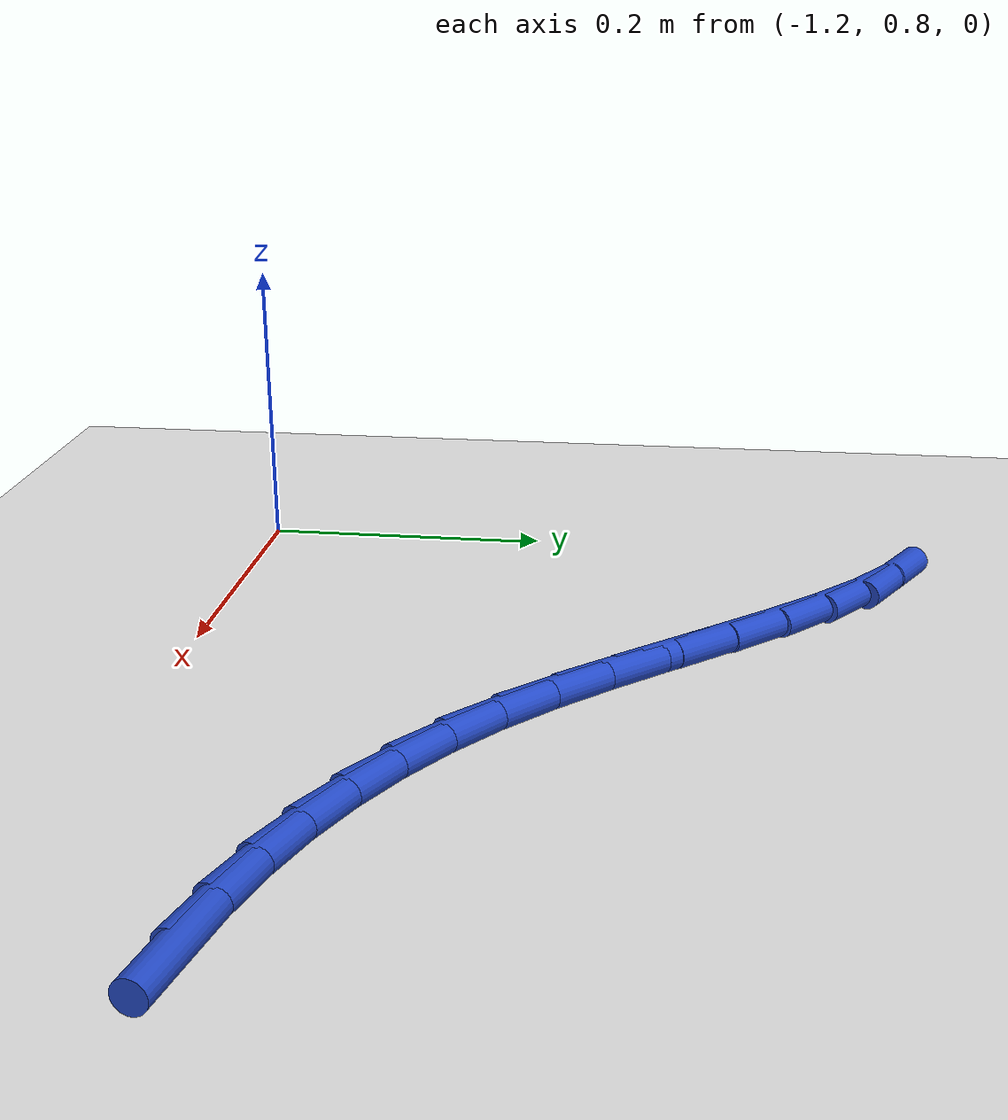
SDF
<sdf version="1.6">
 <world name="default">
  <model name="ground_plane">
   <static>1</static>
   <link name="link">
    <collision name="collision">
     <geometry><plane><normal>0 0 1</normal><size>100 100</size></plane></geometry>
     <surface><friction><ode><mu>100</mu><mu2>50</mu2></ode></friction></surface>
    </collision>
    <visual name="visual">
     <cast_shadows>0</cast_shadows>
     <geometry><plane><normal>0 0 1</normal><size>100 100</size></plane></geometry>
     <material>
      <script><uri>file://media/materials/scripts/gazebo.material</uri><name>Gazebo/WhiteGlow</name></script>
     </material>
    </visual>
   </link>
  </model>
  <model name="line">
   <link name="link_33">
    <pose>-0.6401094255657769 0.9060812180437094 0.01 0 1.57 -0.18249003665453106</pose>
    <collision name="collision">
     <geometry><cylinder><radius>0.01</radius><length>0.08</length></cylinder></geometry>
    </collision>
    <visual name="visual">
     <material>
      <script><name>Gazebo/Blue</name><uri>file://media/materials/scripts/gazebo.material</uri></script>
     </material>
     <geometry><cylinder><radius>0.01</radius><length>0.08</length></cylinder></geometry>
    </visual>
   </link>
   <link name="link_34">
    <pose>-0.6794274513714881 0.913337091931746 0.01 0 1.57 -0.25345281989264795</pose>
    <collision name="collision">
     <geometry><cylinder><radius>0.01</radius><length>0.08</length></cylinder></geometry>
    </collision>
    <visual name="visual">
     <material>
      <script><name>Gazebo/Blue</name><uri>file://media/materials/scripts/gazebo.material</uri></script>
     </material>
     <geometry><cylinder><radius>0.01</radius><length>0.08</length></cylinder></geometry>
    </visual>
   </link>
   <link name="link_35">
    <pose>-0.7176983049540212 0.9232501279615992 0.01 0 1.57 -0.32939499652450926</pose>
    <collision name="collision">
     <geometry><cylinder><radius>0.01</radius><length>0.08</length></cylinder></geometry>
    </collision>
    <visual name="visual">
     <material>
      <script><name>Gazebo/Blue</name><uri>file://media/materials/scripts/gazebo.material</uri></script>
     </material>
     <geometry><cylinder><radius>0.01</radius><length>0.08</length></cylinder></geometry>
    </visual>
   </link>
   <link name="link_36">
    <pose>-0.7549099949792433 0.935970907842068 0.01 0 1.57 -0.4093318876356937</pose>
    <collision name="collision">
     <geometry><cylinder><radius>0.01</radius><length>0.08</length></cylinder></geometry>
    </collision>
    <visual name="visual">
     <material>
      <script><name>Gazebo/Blue</name><uri>file://media/materials/scripts/gazebo.material</uri></script>
     </material>
     <geometry><cylinder><radius>0.01</radius><length>0.08</length></cylinder></geometry>
    </visual>
   </link>
   <link name="link_37">
    <pose>-0.7910505301130214 0.9516500132819524 0.01 0 1.57 -0.49197026340341876</pose>
    <collision name="collision">
     <geometry><cylinder><radius>0.01</radius><length>0.08</length></cylinder></geometry>
    </collision>
    <visual name="visual">
     <material>
      <script><name>Gazebo/Blue</name><uri>file://media/materials/scripts/gazebo.material</uri></script>
     </material>
     <geometry><cylinder><radius>0.01</radius><length>0.08</length></cylinder></geometry>
    </visual>
   </link>
   <link name="link_38">
    <pose>-0.826107919021223 0.9704380259900524 0.01 0 1.57 -0.575796221264351</pose>
    <collision name="collision">
     <geometry><cylinder><radius>0.01</radius><length>0.08</length></cylinder></geometry>
    </collision>
    <visual name="visual">
     <material>
      <script><name>Gazebo/Blue</name><uri>file://media/materials/scripts/gazebo.material</uri></script>
     </material>
     <geometry><cylinder><radius>0.01</radius><length>0.08</length></cylinder></geometry>
    </visual>
   </link>
   <link name="link_39">
    <pose>-0.8600701703697154 0.9924855276751672 0.01 0 1.57 -0.659212178121632</pose>
    <collision name="collision">
     <geometry><cylinder><radius>0.01</radius><length>0.08</length></cylinder></geometry>
    </collision>
    <visual name="visual">
     <material>
      <script><name>Gazebo/Blue</name><uri>file://media/materials/scripts/gazebo.material</uri></script>
     </material>
     <geometry><cylinder><radius>0.01</radius><length>0.08</length></cylinder></geometry>
    </visual>
   </link>
   <link name="link_40">
    <pose>-0.892925292824366 1.017943100046097 0.01 0 1.57 -0.739719881212941</pose>
    <collision name="collision">
     <geometry><cylinder><radius>0.01</radius><length>0.08</length></cylinder></geometry>
    </collision>
    <visual name="visual">
     <material>
      <script><name>Gazebo/Blue</name><uri>file://media/materials/scripts/gazebo.material</uri></script>
     </material>
     <geometry><cylinder><radius>0.01</radius><length>0.08</length></cylinder></geometry>
    </visual>
   </link>
   <link name="link_41">
    <pose>-0.9246703222853487 1.0469128521050097 0.01 0 1.57 -0.802309994501067</pose>
    <collision name="collision">
     <geometry><cylinder><radius>0.01</radius><length>0.08</length></cylinder></geometry>
    </collision>
    <visual name="visual">
     <material>
      <script><name>Gazebo/Blue</name><uri>file://media/materials/scripts/gazebo.material</uri></script>
     </material>
     <geometry><cylinder><radius>0.01</radius><length>0.08</length></cylinder></geometry>
    </visual>
   </link>
   <link name="link_42">
    <pose>-0.9554425280739394 1.0787438943996 0.01 0 1.57 -0.8388945553541998</pose>
    <collision name="collision">
     <geometry><cylinder><radius>0.01</radius><length>0.08</length></cylinder></geometry>
    </collision>
    <visual name="visual">
     <material>
      <script><name>Gazebo/Blue</name><uri>file://media/materials/scripts/gazebo.material</uri></script>
     </material>
     <geometry><cylinder><radius>0.01</radius><length>0.08</length></cylinder></geometry>
    </visual>
   </link>
   <link name="link_43">
    <pose>-0.9854898325491184 1.1121911740768702 0.01 0 1.57 -0.8520282630070609</pose>
    <collision name="collision">
     <geometry><cylinder><radius>0.01</radius><length>0.08</length></cylinder></geometry>
    </collision>
    <visual name="visual">
     <material>
      <script><name>Gazebo/Blue</name><uri>file://media/materials/scripts/gazebo.material</uri></script>
     </material>
     <geometry><cylinder><radius>0.01</radius><length>0.08</length></cylinder></geometry>
    </visual>
   </link>
   <link name="link_44">
    <pose>-1.0150631649441597 1.1459934925485267 0.01 0 1.57 -0.8423016690394987</pose>
    <collision name="collision">
     <geometry><cylinder><radius>0.01</radius><length>0.08</length></cylinder></geometry>
    </collision>
    <visual name="visual">
     <material>
      <script><name>Gazebo/Blue</name><uri>file://media/materials/scripts/gazebo.material</uri></script>
     </material>
     <geometry><cylinder><radius>0.01</radius><length>0.08</length></cylinder></geometry>
    </visual>
   </link>
   <link name="link_45">
    <pose>-1.0444134544923374 1.1788896512262756 0.01 0 1.57 -0.8078647254685356</pose>
    <collision name="collision">
     <geometry><cylinder><radius>0.01</radius><length>0.08</length></cylinder></geometry>
    </collision>
    <visual name="visual">
     <material>
      <script><name>Gazebo/Blue</name><uri>file://media/materials/scripts/gazebo.material</uri></script>
     </material>
     <geometry><cylinder><radius>0.01</radius><length>0.08</length></cylinder></geometry>
    </visual>
   </link>
   <link name="link_46">
    <pose>-1.0737916304269262 1.2096184515218242 0.01 0 1.57 -0.7440442490150625</pose>
    <collision name="collision">
     <geometry><cylinder><radius>0.01</radius><length>0.08</length></cylinder></geometry>
    </collision>
    <visual name="visual">
     <material>
      <script><name>Gazebo/Blue</name><uri>file://media/materials/scripts/gazebo.material</uri></script>
     </material>
     <geometry><cylinder><radius>0.01</radius><length>0.08</length></cylinder></geometry>
    </visual>
   </link>
   <link name="link_47">
    <pose>-1.1034486219811999 1.236918694846878 0.01 0 1.57 -0.642874005500789</pose>
    <collision name="collision">
     <geometry><cylinder><radius>0.01</radius><length>0.08</length></cylinder></geometry>
    </collision>
    <visual name="visual">
     <material>
      <script><name>Gazebo/Blue</name><uri>file://media/materials/scripts/gazebo.material</uri></script>
     </material>
     <geometry><cylinder><radius>0.01</radius><length>0.08</length></cylinder></geometry>
    </visual>
   </link>
   <link name="link_48">
    <pose>-1.1336353583884327 1.259529182613144 0.01 0 1.57 -0.49356013040534336</pose>
    <collision name="collision">
     <geometry><cylinder><radius>0.01</radius><length>0.08</length></cylinder></geometry>
    </collision>
    <visual name="visual">
     <material>
      <script><name>Gazebo/Blue</name><uri>file://media/materials/scripts/gazebo.material</uri></script>
     </material>
     <geometry><cylinder><radius>0.01</radius><length>0.08</length></cylinder></geometry>
    </visual>
   </link>
  </model>
 </world>
</sdf>
